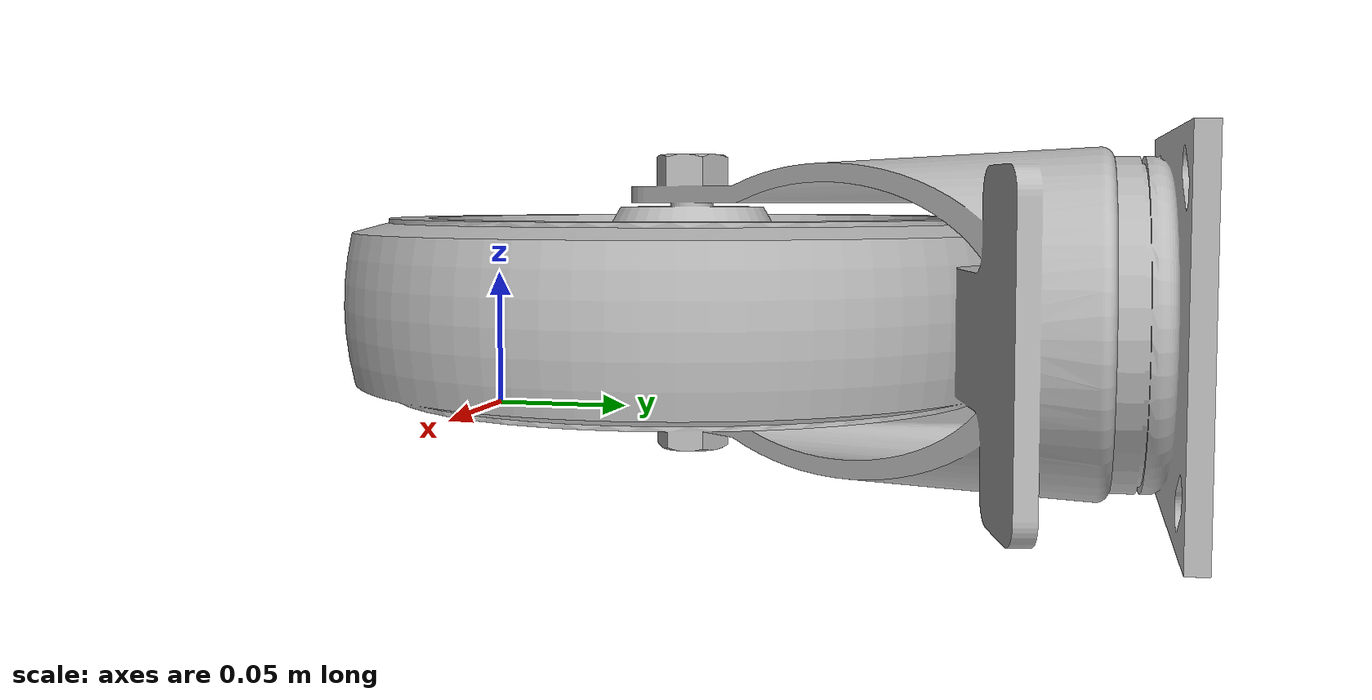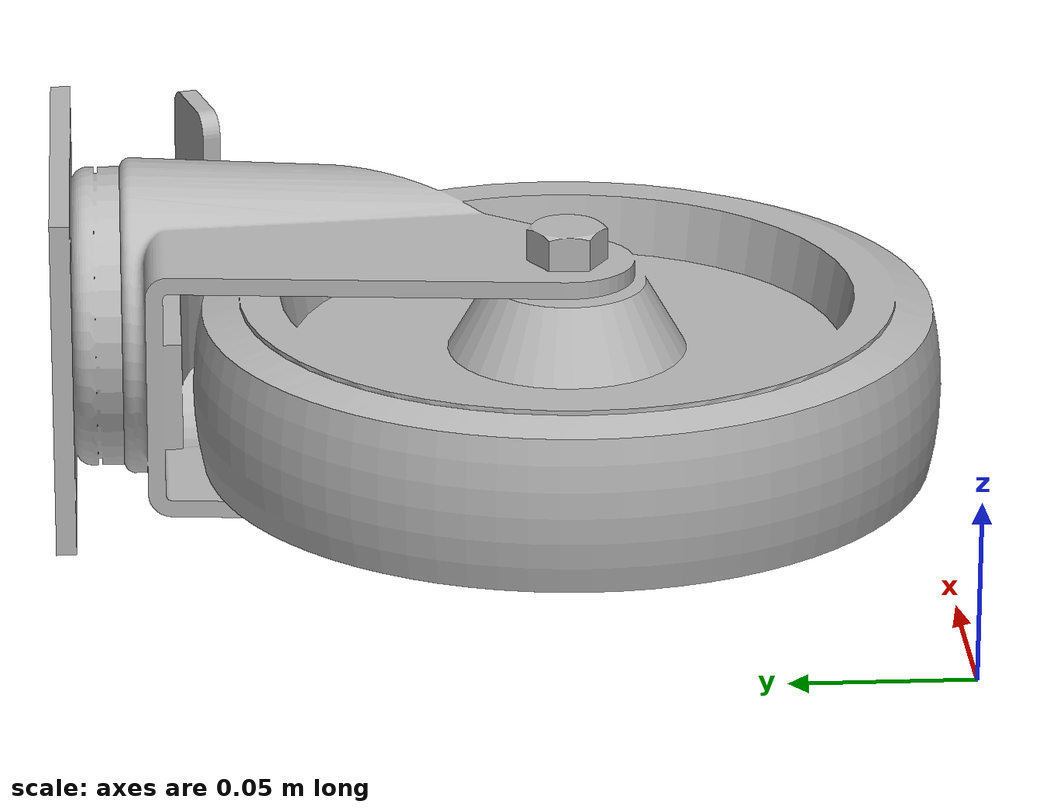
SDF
<?xml version="1.0" ?>
<sdf version="1.4">
  <model name="wheel">
    <static>false</static>

    <link name="link">
      <pose>0.0 0 0.0 0 0 0</pose>
<inertial>
        <mass>0.1</mass>
      </inertial>
     <collision name='collision'>
     <geometry>
          <mesh>
            <uri>file:///home/austin/EECS484_project/simulation/src/image_recognition/wheel/meshes/wheel.dae</uri>
          </mesh>
        </geometry>
      </collision>

      <visual name="visual">
        <geometry>
          <mesh>
           <uri>file:///home/austin/EECS484_project/simulation/src/image_recognition/wheel/meshes/wheel.dae</uri>
          </mesh>
        </geometry>
      </visual>
    </link>
  </model>
</sdf>
